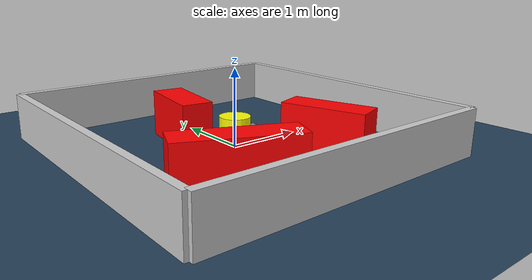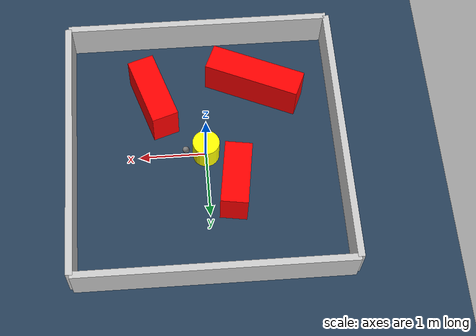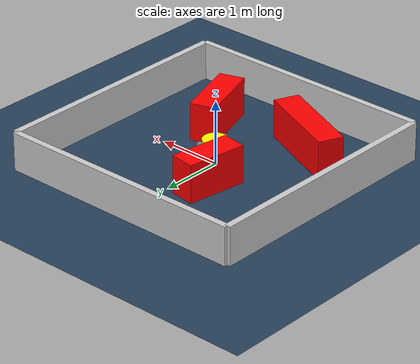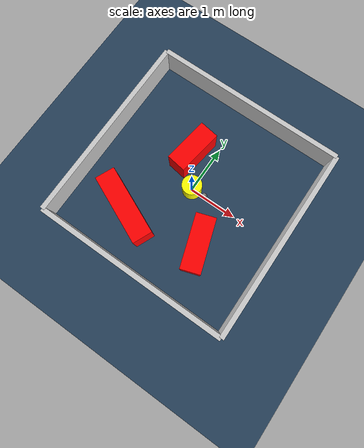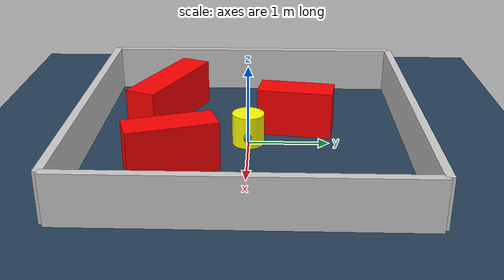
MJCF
<?xml version="1.0" ?>
<mujoco model="generated_environment">
  <option timestep="0.01" integrator="RK4" cone="elliptic"/>
  <default>
    <geom density="1"/>
  </default>
  <asset>
    <texture builtin="gradient" height="3072" rgb1="0.3 0.5 0.7" rgb2="0 0 0" type="skybox" width="512"/>
    <texture builtin="checker" height="300" mark="edge" markrgb="0.8 0.8 0.8" name="groundplane" rgb1="0.2 0.3 0.4" rgb2="0.1 0.2 0.3" type="2d" width="300"/>
    <material name="groundplane" reflectance="0.2" texrepeat="5 5" texture="groundplane" texuniform="true"/>
    <material name="robot" rgba="0.0 1.0 0.0 1"/>
  </asset>
  <worldbody>
    <light dir="0 0 -1" directional="true" pos="0 0 1.5"/>
    <geom condim="4" friction="1.0 0.005 0.001" material="groundplane" name="floor" size="0 0 0.05" type="plane"/>
    <body name="walls">
      <geom name="wall_1" condim="4" pos="-2.0 0.0 0.3" rgba="0.800000011920929 0.800000011920929 0.800000011920929 1.0" size="0.05 2.0 0.3" type="box"/>
      <geom name="wall_2" condim="4" pos="2.0 0.0 0.3" rgba="0.800000011920929 0.800000011920929 0.800000011920929 1.0" size="0.05 2.0 0.3" type="box"/>
      <geom name="wall_3" condim="4" pos="0.0 -2.0 0.3" rgba="0.800000011920929 0.800000011920929 0.800000011920929 1.0" size="2.0 0.05 0.3" type="box"/>
      <geom name="wall_4" condim="4" pos="0.0 2.0 0.3" rgba="0.800000011920929 0.800000011920929 0.800000011920929 1.0" size="2.0 0.05 0.3" type="box"/>
    </body>
    <body name="robot">
      <joint name="joint_x" type="slide" pos="0 0 0" axis="1 0 0"/>
      <joint name="joint_y" type="slide" pos="0 0 0" axis="0 1 0"/>
      <geom name="robot" type="sphere" pos="0.3 0.0 0.2" size="0.05" mass="5." friction="1.0 0.005 0.0001" condim="4" rgba="0.5 0.5 0.5 1.0"/>
      <site name="sensor_ball"/>
    </body>
    <body name="obstacle_movable_1">
      <geom name="obstacle_movable_1" condim="4" pos="0.0 0.0 0.2" euler="0 0 0.0" friction="1.0 0.005 0.001" rgba="1.0 1.0 0.0 1.0" size="0.2 0.2 0.0" type="cylinder" mass="0.1"/>
      <joint type="free"/>
    </body>
    <body name="obstacle_2_static">
      <geom name="obstacle_2_static" condim="4" pos="-0.3987043173271563 0.602639522798041 0.3" euler="0 0 261.49548345250236" friction="1.0 0.005 0.001" rgba="1 0 0 1" size="0.4741951358422247 0.2 0.3" type="box"/>
    </body>
    <body name="obstacle_3_static">
      <geom name="obstacle_3_static" condim="4" pos="-0.8097701508021562 -1.0812505874413834 0.3" euler="0 0 336.178492504854" friction="1.0 0.005 0.001" rgba="1 0 0 1" size="0.7226250643998299 0.2 0.3" type="box"/>
    </body>
    <body name="obstacle_4_static">
      <geom name="obstacle_4_static" condim="4" pos="0.7452183947354665 -0.8711498464822715 0.3" euler="0 0 108.28525730781878" friction="1.0 0.005 0.001" rgba="1 0 0 1" size="0.5380847368348242 0.2 0.3" type="box"/>
    </body>
  </worldbody>
  <actuator>
    <motor name="actuator_x" joint="joint_x" gear="1" ctrlrange="-1 1"/>
    <motor name="actuator_y" joint="joint_y" gear="1" ctrlrange="-1 1"/>
  </actuator>
</mujoco>
